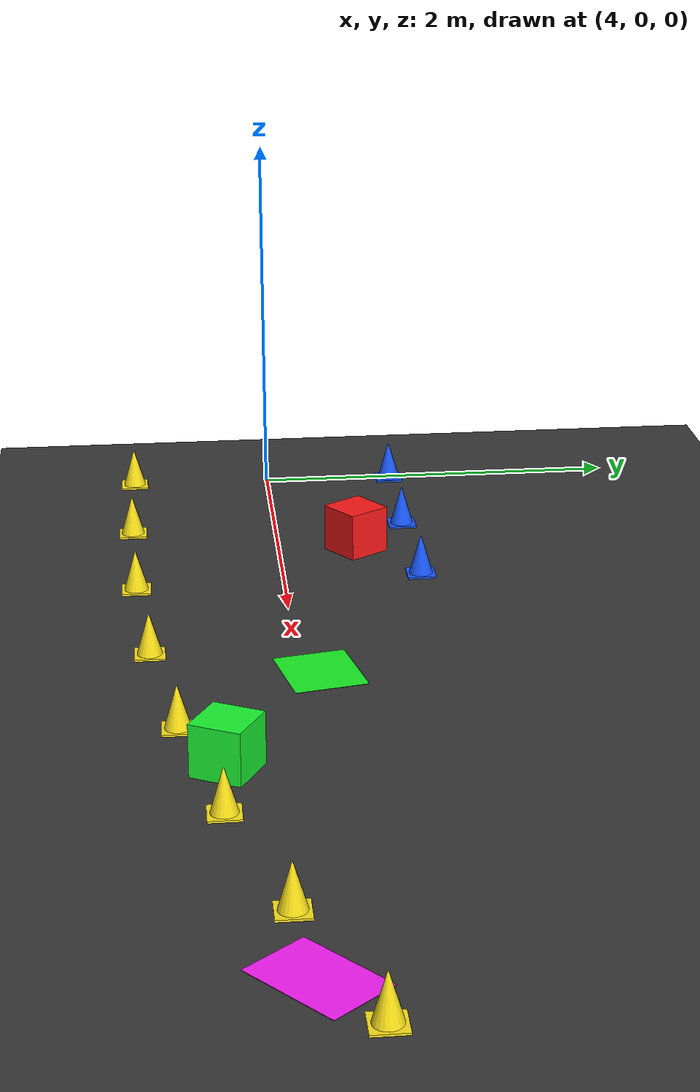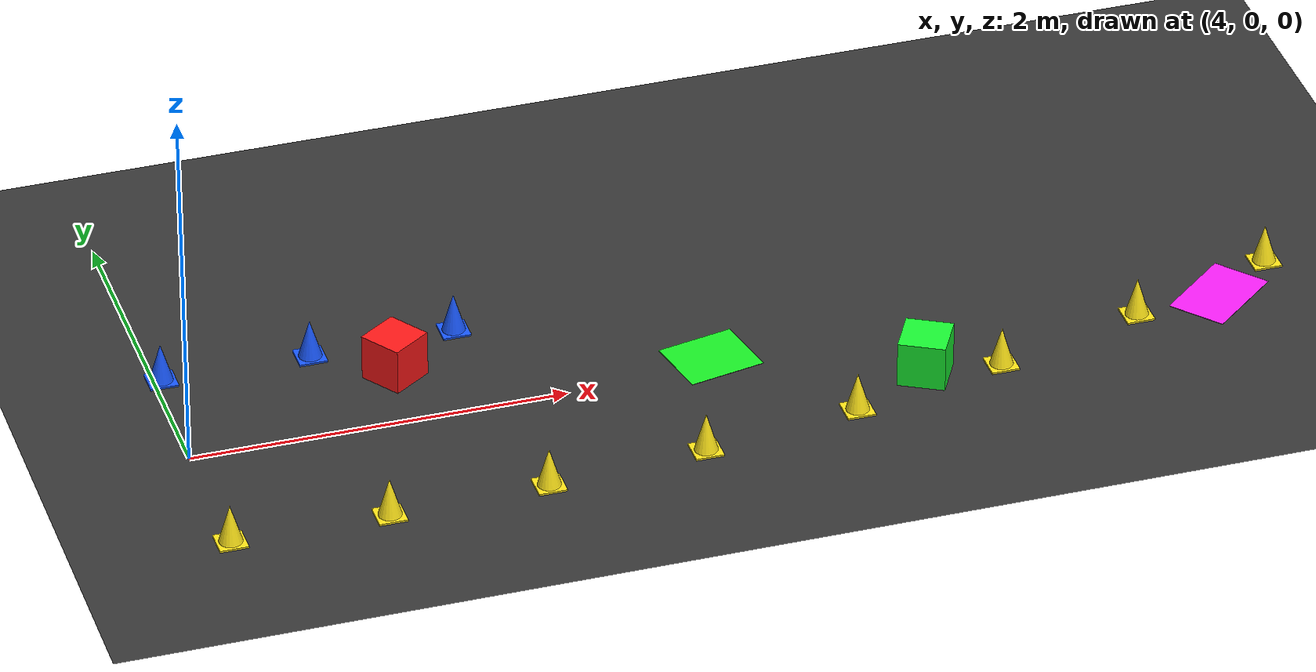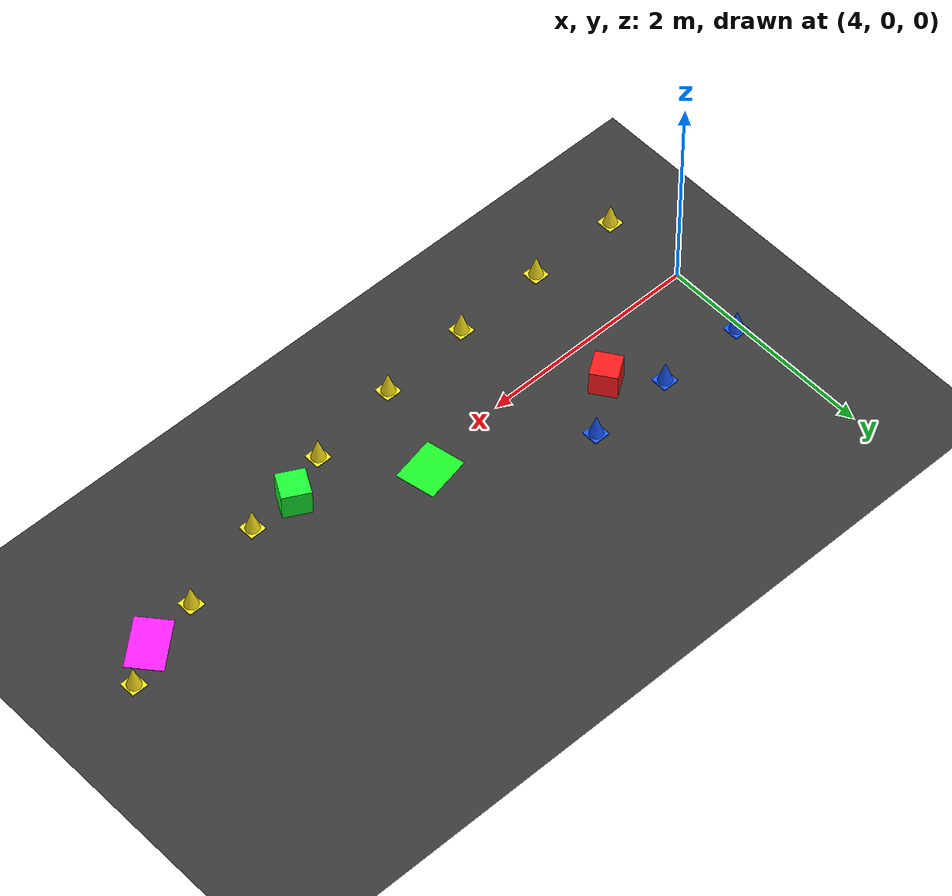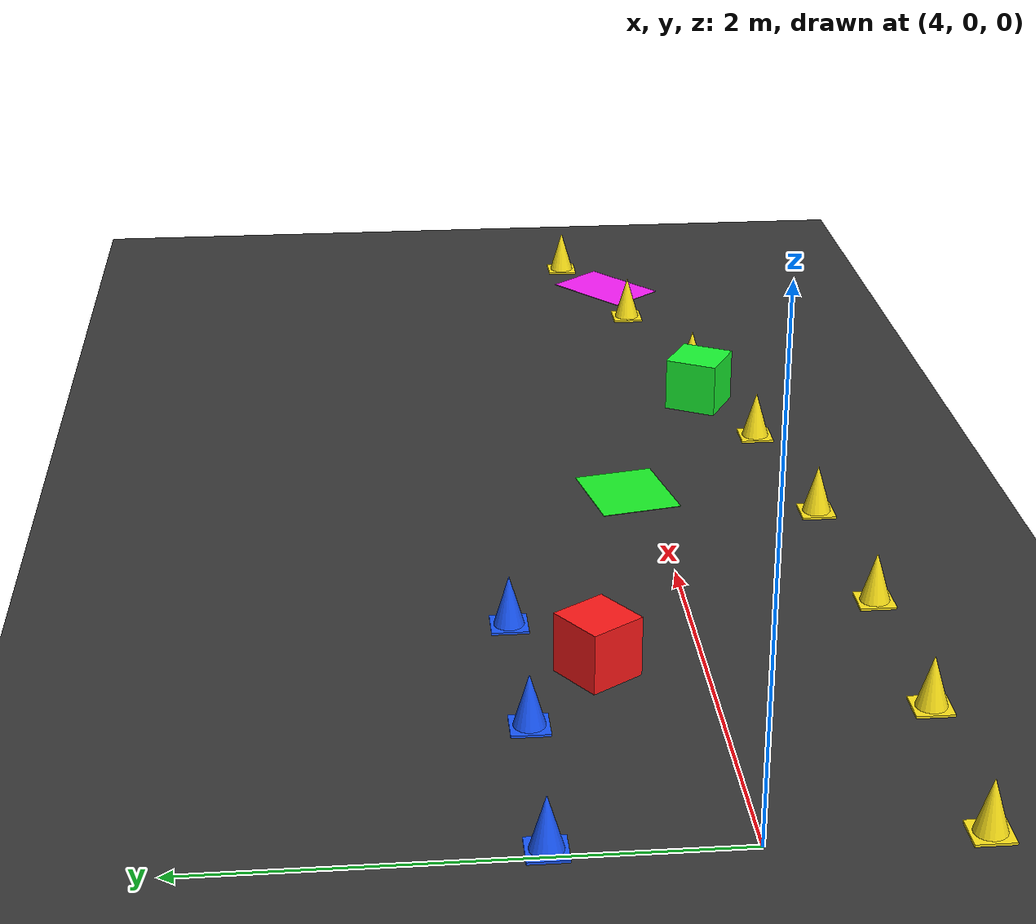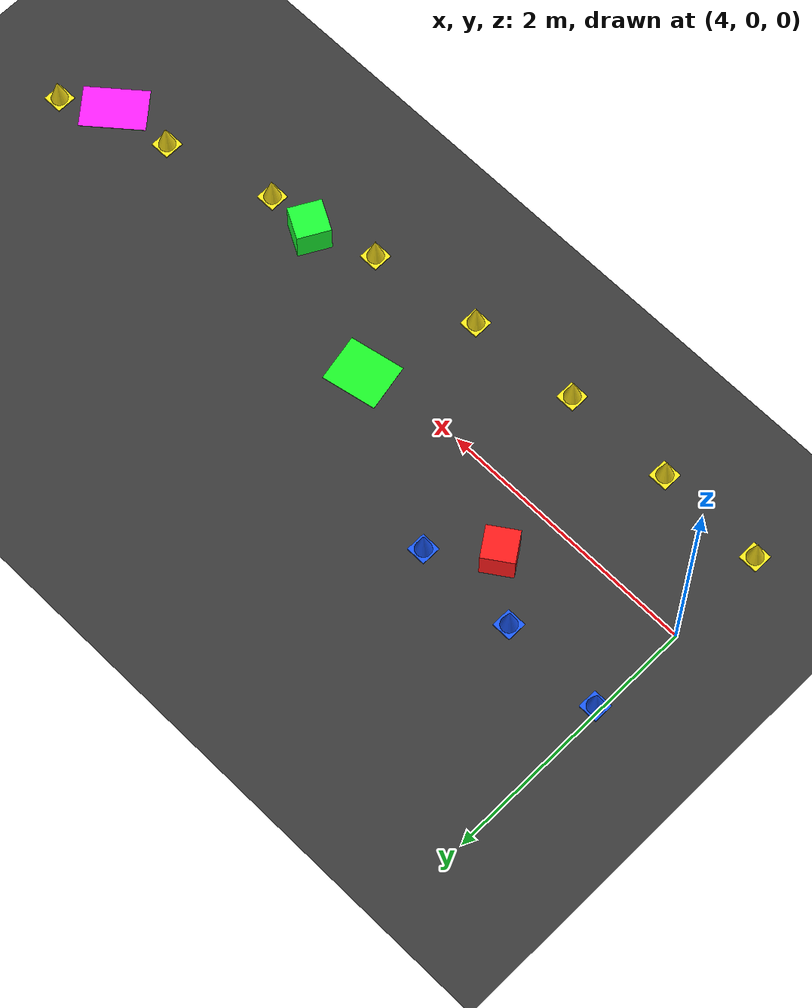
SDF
<sdf version="1.8">
 <world name="track_with_cones">
  <model name="ground_plane">
   <static>true</static>
   <link name="link">
    <collision name="collision">
     <geometry><plane><normal>0 0 1</normal><size>100 100</size></plane></geometry>
     <surface><friction><ode><mu>100</mu><mu2>100</mu2></ode></friction></surface>
    </collision>
    <visual name="visual">
     <geometry><plane><normal>0 0 1</normal><size>100 100</size></plane></geometry>
     <material>
      <ambient>0.22 0.22 0.22 1</ambient>
      <diffuse>0.22 0.22 0.22 1</diffuse>
      <specular>0.05 0.05 0.05 1</specular>
     </material>
    </visual>
   </link>
  </model>
  <model name="noise_poly_red_3d_1">
   <static>true</static>
   <pose>5.2 0.42 0.125 0 0 0.6</pose>
   <link name="link">
    <visual name="visual">
     <geometry><box><size>0.24 0.24 0.25</size></box></geometry>
     <material>
      <ambient>0.95 0.05 0.05 1.0</ambient>
      <diffuse>1.00 0.10 0.10 1.0</diffuse>
      <specular>0.4 0.4 0.4 1.0</specular>
     </material>
    </visual>
    <collision name="collision"><geometry><box><size>0.24 0.24 0.25</size></box></geometry></collision>
   </link>
  </model>
  <model name="noise_poly_green_ground_3">
   <static>true</static>
   <pose>6.8 0.10 0.001 0 0 0.2</pose>
   <link name="link">
    <visual name="visual">
     <geometry><box><size>0.42 0.36 0.002</size></box></geometry>
     <material>
      <ambient>0.08 0.88 0.12 1.0</ambient>
      <diffuse>0.10 0.95 0.15 1.0</diffuse>
      <specular>0.1 0.1 0.1 1.0</specular>
     </material>
    </visual>
   </link>
  </model>
  <model name="noise_poly_green_3d_2">
   <static>true</static>
   <pose>7.8 -0.38 0.125 0 0 -0.5</pose>
   <link name="link">
    <visual name="visual">
     <geometry><box><size>0.25 0.25 0.25</size></box></geometry>
     <material>
      <ambient>0.05 0.90 0.15 1.0</ambient>
      <diffuse>0.10 0.98 0.20 1.0</diffuse>
      <specular>0.3 0.3 0.3 1.0</specular>
     </material>
    </visual>
    <collision name="collision"><geometry><box><size>0.25 0.25 0.25</size></box></geometry></collision>
   </link>
  </model>
  <model name="noise_poly_magenta_ground_4">
   <static>true</static>
   <pose>9.5 -0.12 0.001 0 0 0.7</pose>
   <link name="link">
    <visual name="visual">
     <geometry><box><size>0.48 0.32 0.002</size></box></geometry>
     <material>
      <ambient>0.88 0.08 0.88 1.0</ambient>
      <diffuse>0.98 0.12 0.98 1.0</diffuse>
      <specular>0.1 0.1 0.1 1.0</specular>
     </material>
    </visual>
   </link>
  </model>
  <model name="cone_blue_5">
   <static>true</static>
   <pose>4.0408 0.7236 0.11 0 0 0</pose>
   <link name="link">
    <visual name="base_visual">
     <pose>0 0 -0.105 0 0 0</pose>
     <geometry><box><size>0.15 0.15 0.01</size></box></geometry>
     <material>
      <ambient>0.05 0.25 0.95 1.0</ambient>
      <diffuse>0.10 0.35 1.00 1.0</diffuse>
      <specular>0.2 0.2 0.2 1.0</specular>
     </material>
    </visual>
    <visual name="cone_visual">
     <geometry><cone><radius>0.065</radius><length>0.22</length></cone></geometry>
     <material>
      <ambient>0.05 0.25 0.95 1.0</ambient>
      <diffuse>0.10 0.35 1.00 1.0</diffuse>
      <specular>0.2 0.2 0.2 1.0</specular>
     </material>
    </visual>
    <collision name="collision">
     <geometry><cylinder><radius>0.065</radius><length>0.22</length></cylinder></geometry>
    </collision>
   </link>
  </model>
  <model name="cone_yellow_5">
   <static>true</static>
   <pose>4.0115 -0.7761 0.11 0 0 0</pose>
   <link name="link">
    <visual name="base_visual">
     <pose>0 0 -0.105 0 0 0</pose>
     <geometry><box><size>0.15 0.15 0.01</size></box></geometry>
     <material>
      <ambient>0.95 0.85 0.05 1.0</ambient>
      <diffuse>1.00 0.90 0.10 1.0</diffuse>
      <specular>0.2 0.2 0.2 1.0</specular>
     </material>
    </visual>
    <visual name="cone_visual">
     <geometry><cone><radius>0.065</radius><length>0.22</length></cone></geometry>
     <material>
      <ambient>0.95 0.85 0.05 1.0</ambient>
      <diffuse>1.00 0.90 0.10 1.0</diffuse>
      <specular>0.2 0.2 0.2 1.0</specular>
     </material>
    </visual>
    <collision name="collision">
     <geometry><cylinder><radius>0.065</radius><length>0.22</length></cylinder></geometry>
    </collision>
   </link>
  </model>
  <model name="cone_blue_6">
   <static>true</static>
   <pose>4.8288 0.7131 0.11 0 0 0</pose>
   <link name="link">
    <visual name="base_visual">
     <pose>0 0 -0.105 0 0 0</pose>
     <geometry><box><size>0.15 0.15 0.01</size></box></geometry>
     <material>
      <ambient>0.05 0.25 0.95 1.0</ambient>
      <diffuse>0.10 0.35 1.00 1.0</diffuse>
      <specular>0.2 0.2 0.2 1.0</specular>
     </material>
    </visual>
    <visual name="cone_visual">
     <geometry><cone><radius>0.065</radius><length>0.22</length></cone></geometry>
     <material>
      <ambient>0.05 0.25 0.95 1.0</ambient>
      <diffuse>0.10 0.35 1.00 1.0</diffuse>
      <specular>0.2 0.2 0.2 1.0</specular>
     </material>
    </visual>
    <collision name="collision">
     <geometry><cylinder><radius>0.065</radius><length>0.22</length></cylinder></geometry>
    </collision>
   </link>
  </model>
  <model name="cone_yellow_6">
   <static>true</static>
   <pose>4.8341 -0.7869 0.11 0 0 0</pose>
   <link name="link">
    <visual name="base_visual">
     <pose>0 0 -0.105 0 0 0</pose>
     <geometry><box><size>0.15 0.15 0.01</size></box></geometry>
     <material>
      <ambient>0.95 0.85 0.05 1.0</ambient>
      <diffuse>1.00 0.90 0.10 1.0</diffuse>
      <specular>0.2 0.2 0.2 1.0</specular>
     </material>
    </visual>
    <visual name="cone_visual">
     <geometry><cone><radius>0.065</radius><length>0.22</length></cone></geometry>
     <material>
      <ambient>0.95 0.85 0.05 1.0</ambient>
      <diffuse>1.00 0.90 0.10 1.0</diffuse>
      <specular>0.2 0.2 0.2 1.0</specular>
     </material>
    </visual>
    <collision name="collision">
     <geometry><cylinder><radius>0.065</radius><length>0.22</length></cylinder></geometry>
    </collision>
   </link>
  </model>
  <model name="cone_blue_7">
   <static>true</static>
   <pose>5.6012 0.7285 0.11 0 0 0</pose>
   <link name="link">
    <visual name="base_visual">
     <pose>0 0 -0.105 0 0 0</pose>
     <geometry><box><size>0.15 0.15 0.01</size></box></geometry>
     <material>
      <ambient>0.05 0.25 0.95 1.0</ambient>
      <diffuse>0.10 0.35 1.00 1.0</diffuse>
      <specular>0.2 0.2 0.2 1.0</specular>
     </material>
    </visual>
    <visual name="cone_visual">
     <geometry><cone><radius>0.065</radius><length>0.22</length></cone></geometry>
     <material>
      <ambient>0.05 0.25 0.95 1.0</ambient>
      <diffuse>0.10 0.35 1.00 1.0</diffuse>
      <specular>0.2 0.2 0.2 1.0</specular>
     </material>
    </visual>
    <collision name="collision">
     <geometry><cylinder><radius>0.065</radius><length>0.22</length></cylinder></geometry>
    </collision>
   </link>
  </model>
  <model name="cone_yellow_7">
   <static>true</static>
   <pose>5.6720 -0.7698 0.11 0 0 0</pose>
   <link name="link">
    <visual name="base_visual">
     <pose>0 0 -0.105 0 0 0</pose>
     <geometry><box><size>0.15 0.15 0.01</size></box></geometry>
     <material>
      <ambient>0.95 0.85 0.05 1.0</ambient>
      <diffuse>1.00 0.90 0.10 1.0</diffuse>
      <specular>0.2 0.2 0.2 1.0</specular>
     </material>
    </visual>
    <visual name="cone_visual">
     <geometry><cone><radius>0.065</radius><length>0.22</length></cone></geometry>
     <material>
      <ambient>0.95 0.85 0.05 1.0</ambient>
      <diffuse>1.00 0.90 0.10 1.0</diffuse>
      <specular>0.2 0.2 0.2 1.0</specular>
     </material>
    </visual>
    <collision name="collision">
     <geometry><cylinder><radius>0.065</radius><length>0.22</length></cylinder></geometry>
    </collision>
   </link>
  </model>
  <model name="cone_yellow_8">
   <static>true</static>
   <pose>6.5200 -0.7066 0.11 0 0 0</pose>
   <link name="link">
    <visual name="base_visual">
     <pose>0 0 -0.105 0 0 0</pose>
     <geometry><box><size>0.15 0.15 0.01</size></box></geometry>
     <material>
      <ambient>0.95 0.85 0.05 1.0</ambient>
      <diffuse>1.00 0.90 0.10 1.0</diffuse>
      <specular>0.2 0.2 0.2 1.0</specular>
     </material>
    </visual>
    <visual name="cone_visual">
     <geometry><cone><radius>0.065</radius><length>0.22</length></cone></geometry>
     <material>
      <ambient>0.95 0.85 0.05 1.0</ambient>
      <diffuse>1.00 0.90 0.10 1.0</diffuse>
      <specular>0.2 0.2 0.2 1.0</specular>
     </material>
    </visual>
    <collision name="collision">
     <geometry><cylinder><radius>0.065</radius><length>0.22</length></cylinder></geometry>
    </collision>
   </link>
  </model>
  <model name="cone_yellow_9">
   <static>true</static>
   <pose>7.3671 -0.5867 0.11 0 0 0</pose>
   <link name="link">
    <visual name="base_visual">
     <pose>0 0 -0.105 0 0 0</pose>
     <geometry><box><size>0.15 0.15 0.01</size></box></geometry>
     <material>
      <ambient>0.95 0.85 0.05 1.0</ambient>
      <diffuse>1.00 0.90 0.10 1.0</diffuse>
      <specular>0.2 0.2 0.2 1.0</specular>
     </material>
    </visual>
    <visual name="cone_visual">
     <geometry><cone><radius>0.065</radius><length>0.22</length></cone></geometry>
     <material>
      <ambient>0.95 0.85 0.05 1.0</ambient>
      <diffuse>1.00 0.90 0.10 1.0</diffuse>
      <specular>0.2 0.2 0.2 1.0</specular>
     </material>
    </visual>
    <collision name="collision">
     <geometry><cylinder><radius>0.065</radius><length>0.22</length></cylinder></geometry>
    </collision>
   </link>
  </model>
  <model name="cone_yellow_10">
   <static>true</static>
   <pose>8.2035 -0.4098 0.11 0 0 0</pose>
   <link name="link">
    <visual name="base_visual">
     <pose>0 0 -0.105 0 0 0</pose>
     <geometry><box><size>0.15 0.15 0.01</size></box></geometry>
     <material>
      <ambient>0.95 0.85 0.05 1.0</ambient>
      <diffuse>1.00 0.90 0.10 1.0</diffuse>
      <specular>0.2 0.2 0.2 1.0</specular>
     </material>
    </visual>
    <visual name="cone_visual">
     <geometry><cone><radius>0.065</radius><length>0.22</length></cone></geometry>
     <material>
      <ambient>0.95 0.85 0.05 1.0</ambient>
      <diffuse>1.00 0.90 0.10 1.0</diffuse>
      <specular>0.2 0.2 0.2 1.0</specular>
     </material>
    </visual>
    <collision name="collision">
     <geometry><cylinder><radius>0.065</radius><length>0.22</length></cylinder></geometry>
    </collision>
   </link>
  </model>
  <model name="cone_yellow_11">
   <static>true</static>
   <pose>9.0237 -0.1801 0.11 0 0 0</pose>
   <link name="link">
    <visual name="base_visual">
     <pose>0 0 -0.105 0 0 0</pose>
     <geometry><box><size>0.15 0.15 0.01</size></box></geometry>
     <material>
      <ambient>0.95 0.85 0.05 1.0</ambient>
      <diffuse>1.00 0.90 0.10 1.0</diffuse>
      <specular>0.2 0.2 0.2 1.0</specular>
     </material>
    </visual>
    <visual name="cone_visual">
     <geometry><cone><radius>0.065</radius><length>0.22</length></cone></geometry>
     <material>
      <ambient>0.95 0.85 0.05 1.0</ambient>
      <diffuse>1.00 0.90 0.10 1.0</diffuse>
      <specular>0.2 0.2 0.2 1.0</specular>
     </material>
    </visual>
    <collision name="collision">
     <geometry><cylinder><radius>0.065</radius><length>0.22</length></cylinder></geometry>
    </collision>
   </link>
  </model>
  <model name="cone_yellow_12">
   <static>true</static>
   <pose>9.8296 0.0984 0.11 0 0 0</pose>
   <link name="link">
    <visual name="base_visual">
     <pose>0 0 -0.105 0 0 0</pose>
     <geometry><box><size>0.15 0.15 0.01</size></box></geometry>
     <material>
      <ambient>0.95 0.85 0.05 1.0</ambient>
      <diffuse>1.00 0.90 0.10 1.0</diffuse>
      <specular>0.2 0.2 0.2 1.0</specular>
     </material>
    </visual>
    <visual name="cone_visual">
     <geometry><cone><radius>0.065</radius><length>0.22</length></cone></geometry>
     <material>
      <ambient>0.95 0.85 0.05 1.0</ambient>
      <diffuse>1.00 0.90 0.10 1.0</diffuse>
      <specular>0.2 0.2 0.2 1.0</specular>
     </material>
    </visual>
    <collision name="collision">
     <geometry><cylinder><radius>0.065</radius><length>0.22</length></cylinder></geometry>
    </collision>
   </link>
  </model>
 </world>
</sdf>
